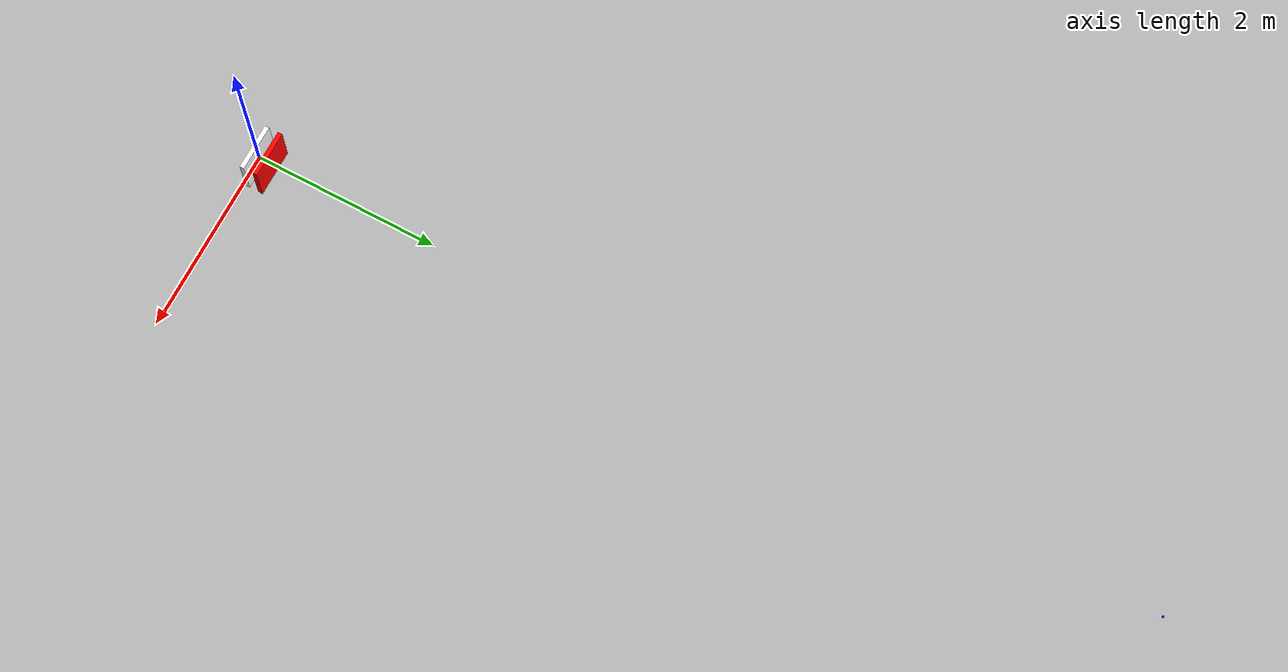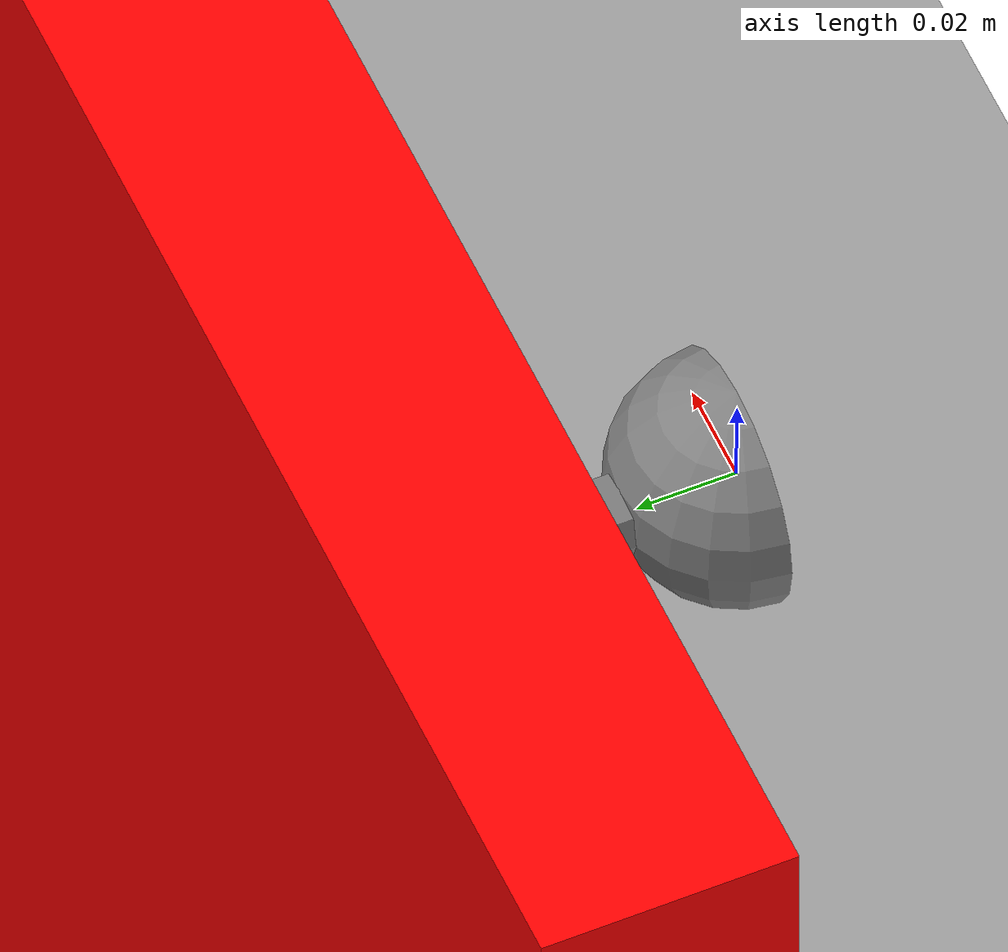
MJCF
<mujoco model="muscle">
  <option gravity="0 0 0"/>

  <visual>
    <map force="0.1" zfar="30" />
    <rgba haze="0 0 0 1" />
    <global offwidth="1920" offheight="1080" elevation="-90" azimuth="0" />
    <quality shadowsize="2048" />
    <headlight ambient="0.3 0.3 0.3" diffuse="0.8 0.8 0.8" specular="0.4 0.4 0.4" />
  </visual>

  <default>
    <muscle ctrllimited="true" ctrlrange="0 1" />
  </default>

  <worldbody>
    <body name="passive_plate" pos="0 -.025 0">
      <site name="extrafusal_site1" pos="0 .025 0" size="0.025" />
      <geom name="passive_plate" type="box" size=".25 .025 0.25" density="300" rgba="1 1 1 1" />
      <body name="active_plate" pos="0 .15 0">
        <site name="extrafusal_site2" pos="0 -.025 0" size="0.025" />
        <geom name="active_plate" type="box" size=".25 .025 0.25" density="300" rgba="1 0 0 1" />
        <joint name="stretcher_joint" pos="0 .4 0" type="slide" axis="0 1 0" damping="0" />
      </body>
    </body>

    <body name="dummy_body" pos="0 10 0">
      <geom type="box" size=".01 .01 0.01" density="300" rgba="0 0 1 1" />
      <joint name="dummy_joint" type="slide" axis="0 0 1" damping="100" />
    </body>
  </worldbody>

  <tendon>
    <spatial name="extrafusal" limited="true" range=".1 .5" width="0.008">
      <site site="extrafusal_site1" />
      <site site="extrafusal_site2" />
    </spatial>
  </tendon>

  <actuator>
    <velocity name="stretcher" joint="stretcher_joint" kv="1000" ctrlrange="-1 1" />
    <muscle name="muscle" tendon="extrafusal" force="1" timeconst=".01 .04" ctrlrange="0 1" />
    <velocity name="alpha_drive" joint="dummy_joint" kv="1" ctrlrange="0 1" />
    <velocity name="gamma_static" joint="dummy_joint" kv="1" ctrlrange="0 1" />
    <velocity name="gamma_dynamic" joint="dummy_joint" kv="1" ctrlrange="0 1" />
  </actuator>

  <sensor>
    <actuatorpos name="muscle_length" actuator="muscle" />
    <actuatorvel name="muscle_velocity" actuator="muscle" />
    <actuatorfrc name="muscle_force" actuator="muscle" />
  </sensor>

</mujoco>
